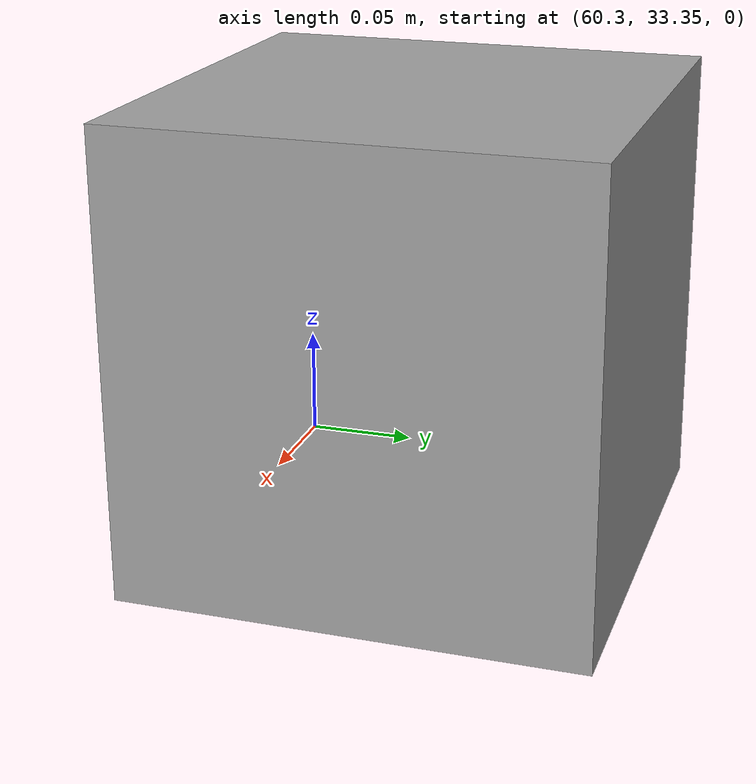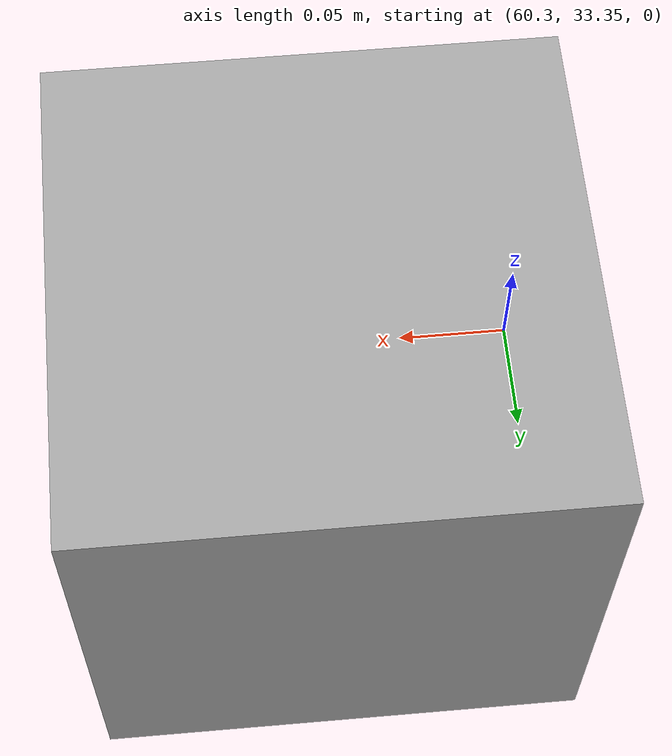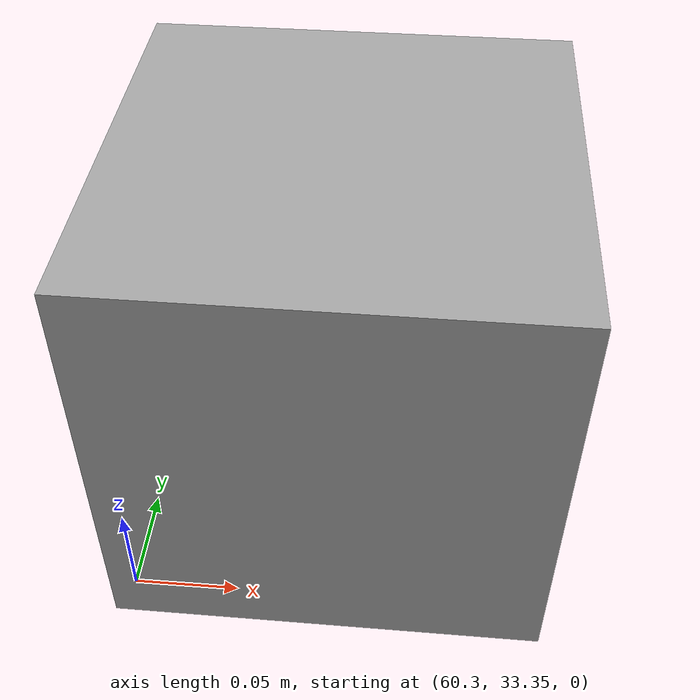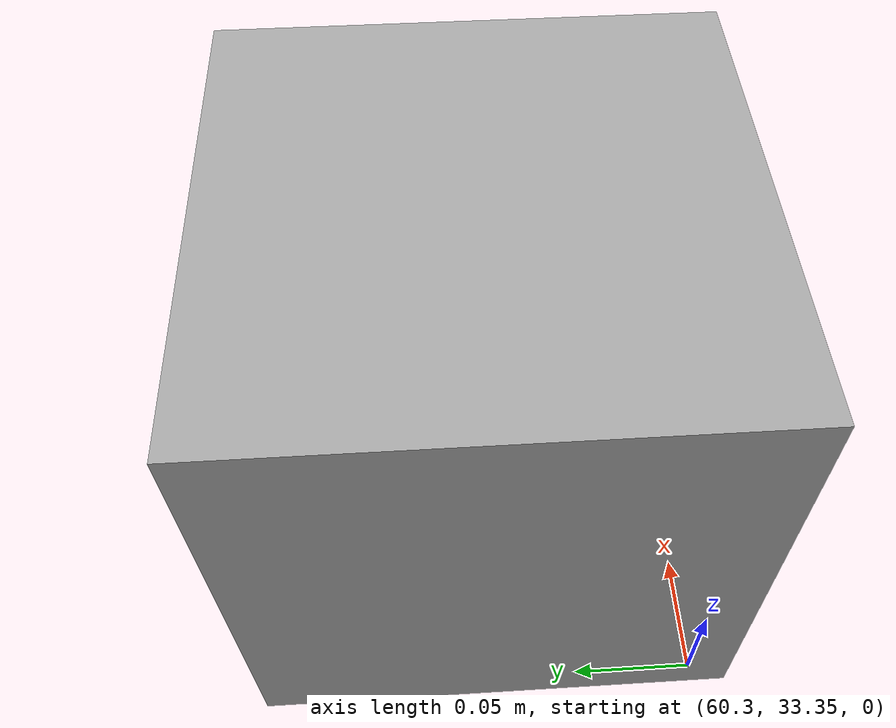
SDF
<sdf version="1.6">
 <world name="default">
  <model name="Yellow_Mailbox">
   <link name="link">
    <inertial>
     <mass>0.3</mass>
     <inertia><ixx>0.5</ixx><ixy>0</ixy><ixz>0</ixz><iyy>0.5</iyy><iyz>0</iyz><izz>1</izz></inertia>
    </inertial>
    <visual name="visual">
     <geometry><mesh><uri>model://Yellow_Mailbox/meshes/yellow.dae</uri><scale>1 1 1</scale></mesh></geometry>
     <material>
      <shader type="normal_map_tangent_space"><normal_map>__default__</normal_map></shader>
      <emissive>1 1 0 0</emissive>
     </material>
    </visual>
    <collision name="collision">
     <geometry><box><size>1.5 1.5 0.3</size></box></geometry>
     <surface>
      <friction>
       <ode><mu>1</mu><mu2>1</mu2><fdir1>0 0 0</fdir1><slip1>0</slip1><slip2>0</slip2></ode>
       <torsional>
        <coefficient>1</coefficient>
        <patch_radius>0</patch_radius>
        <surface_radius>0</surface_radius>
        <use_patch_radius>1</use_patch_radius>
        <ode><slip>0</slip></ode>
       </torsional>
      </friction>
      <bounce><restitution_coefficient>0</restitution_coefficient><threshold>1e+06</threshold></bounce>
      <contact>
       <collide_without_contact>0</collide_without_contact>
       <collide_without_contact_bitmask>1</collide_without_contact_bitmask>
       <collide_bitmask>1</collide_bitmask>
       <ode>
        <soft_cfm>0</soft_cfm>
        <soft_erp>0.2</soft_erp>
        <kp>1e+13</kp>
        <kd>1</kd>
        <max_vel>0.1</max_vel>
        <min_depth>0.001</min_depth>
       </ode>
       <bullet>
        <split_impulse>1</split_impulse>
        <split_impulse_penetration_threshold>-0.01</split_impulse_penetration_threshold>
        <soft_cfm>0</soft_cfm>
        <soft_erp>0.2</soft_erp>
        <kp>1e+13</kp>
        <kd>1</kd>
       </bullet>
      </contact>
     </surface>
    </collision>
   </link>
   <static>0</static>
   <pose>70.7731 59.4055 0.14902 0 -0 0</pose>
  </model>
  <model name="Blue_Package_0">
   <link name="link">
    <inertial>
     <mass>0.2</mass>
     <inertia><ixx>1</ixx><ixy>0</ixy><ixz>0</ixz><iyy>1</iyy><iyz>0</iyz><izz>1</izz></inertia>
    </inertial>
    <visual name="visual">
     <geometry><mesh><uri>model://Blue_Package/meshes/bluebox.dae</uri><scale>1 1 1</scale></mesh></geometry>
     <material>
      <emissive>0 0 1 0</emissive>
      <shader type="vertex"><normal_map>__default__</normal_map></shader>
     </material>
    </visual>
    <collision name="collision">
     <geometry><box><size>0.2 0.2 0.2</size></box></geometry>
     <surface>
      <friction>
       <ode><mu>1</mu><mu2>1</mu2><fdir1>0 0 0</fdir1><slip1>0</slip1><slip2>0</slip2></ode>
       <torsional>
        <coefficient>1</coefficient>
        <patch_radius>0</patch_radius>
        <surface_radius>0</surface_radius>
        <use_patch_radius>1</use_patch_radius>
        <ode><slip>0</slip></ode>
       </torsional>
      </friction>
      <bounce><restitution_coefficient>0</restitution_coefficient><threshold>1e+06</threshold></bounce>
      <contact>
       <collide_without_contact>0</collide_without_contact>
       <collide_without_contact_bitmask>1</collide_without_contact_bitmask>
       <collide_bitmask>1</collide_bitmask>
       <ode>
        <soft_cfm>0</soft_cfm>
        <soft_erp>0.2</soft_erp>
        <kp>1e+13</kp>
        <kd>1</kd>
        <max_vel>0.1</max_vel>
        <min_depth>0.001</min_depth>
       </ode>
       <bullet>
        <split_impulse>1</split_impulse>
        <split_impulse_penetration_threshold>-0.01</split_impulse_penetration_threshold>
        <soft_cfm>0</soft_cfm>
        <soft_erp>0.2</soft_erp>
        <kp>1e+13</kp>
        <kd>1</kd>
       </bullet>
      </contact>
     </surface>
    </collision>
   </link>
   <static>0</static>
   <pose>60.3937 33.4348 0.09902 0 -0 0</pose>
  </model>
 </world>
</sdf>
